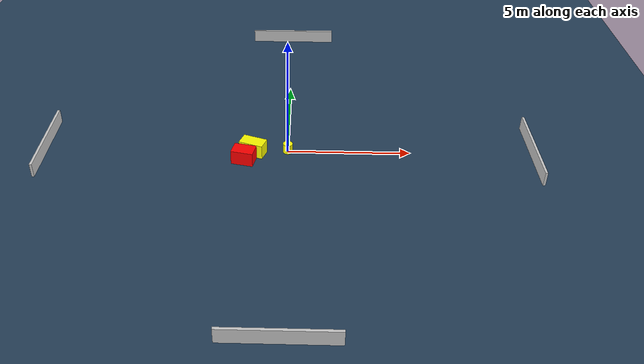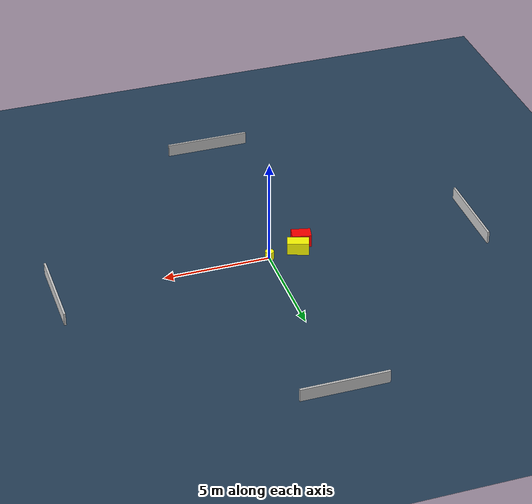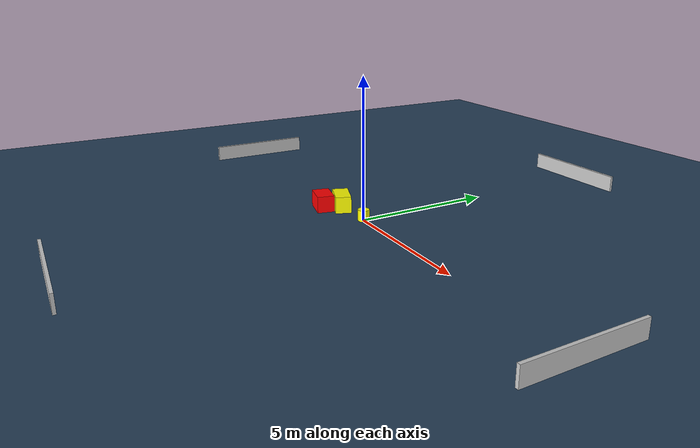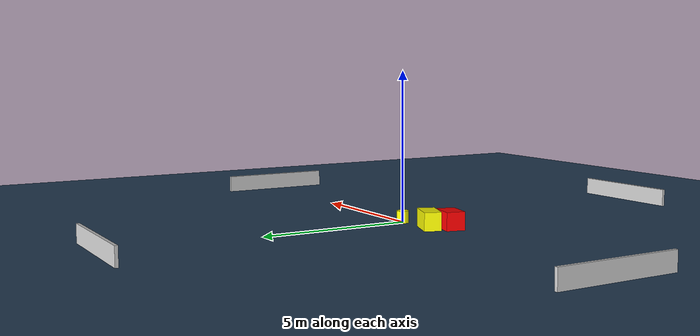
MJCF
<?xml version="1.0" ?>
<mujoco model="generated_environment">
  <option timestep="0.01" integrator="RK4" cone="elliptic"/>
  <default>
    <geom density="1"/>
  </default>
  <asset>
    <texture builtin="gradient" height="3072" name="skybox" rgb1="0.3 0.5 0.7" rgb2="0 0 0" type="skybox" width="512"/>
    <texture builtin="checker" height="300" name="groundplane" rgb1="0.2 0.3 0.4" rgb2="0.1 0.2 0.3" type="2d" width="300"/>
    <material name="groundplane" reflectance="0.2" texrepeat="5 5" texture="groundplane"/>
  </asset>
  <worldbody>
    <light dir="0 0 -1" directional="true" pos="0 0 1.5"/>
    <geom condim="3" friction="0.5 0.005 0.001" material="groundplane" name="floor" pos="0 0 0" size="0 0 0.05" type="plane"/>
    <body name="walls">
      <geom name="wall_1" condim="4" pos="-10.0 0.0 0.3" rgba="0.800000011920929 0.800000011920929 0.800000011920929 1.0" size="0.05 2.0 0.3" type="box"/>
      <geom name="wall_2" condim="4" pos="10.0 0.0 0.3" rgba="0.800000011920929 0.800000011920929 0.800000011920929 1.0" size="0.05 2.0 0.3" type="box"/>
      <geom name="wall_3" condim="4" pos="0.0 -10.0 0.3" rgba="0.800000011920929 0.800000011920929 0.800000011920929 1.0" size="2.0 0.05 0.3" type="box"/>
      <geom name="wall_4" condim="4" pos="0.0 10.0 0.3" rgba="0.800000011920929 0.800000011920929 0.800000011920929 1.0" size="2.0 0.05 0.3" type="box"/>
    </body>
    <body name="robot">
      <joint name="joint_x" type="slide" pos="0 0 0" axis="1 0 0"/>
      <joint name="joint_y" type="slide" pos="0 0 0" axis="0 1 0"/>
      <geom name="robot" type="cylinder" pos="0.0 0.0 0.2" size="0.2 0.2 0.0" mass="5.0" friction="1.0 0.005 0.0001" condim="4" rgba="1.0 1.0 0.0 1.0"/>
    </body>
    <body name="obstacle_1_movable">
      <geom name="obstacle_1_movable" condim="4" pos="-1.4226052971678849 -0.11261974323433092 0.3" euler="0 0 340.0001526171901" friction="0.0 0.005 0.001" rgba="1.0 1.0 0.0 1.0" size="0.5058674440327213 0.2811198784586205 0.3" type="box" mass="0.1"/>
      <joint type="free"/>
    </body>
    <body name="obstacle_2_static">
      <geom name="obstacle_2_static" condim="4" pos="-1.7681881312592245 -0.6921523584507918 0.3" euler="0 0 167.5251486304502" friction="0.0 0.005 0.001" rgba="1.0 0.0 0.0 1.0" size="0.45074175743806283 0.30706276420196776 0.3" type="box"/>
    </body>
  </worldbody>
  <actuator>
    <motor name="actuator_x" joint="joint_x" gear="1" ctrlrange="-1 1"/>
    <motor name="actuator_y" joint="joint_y" gear="1" ctrlrange="-1 1"/>
  </actuator>
</mujoco>
